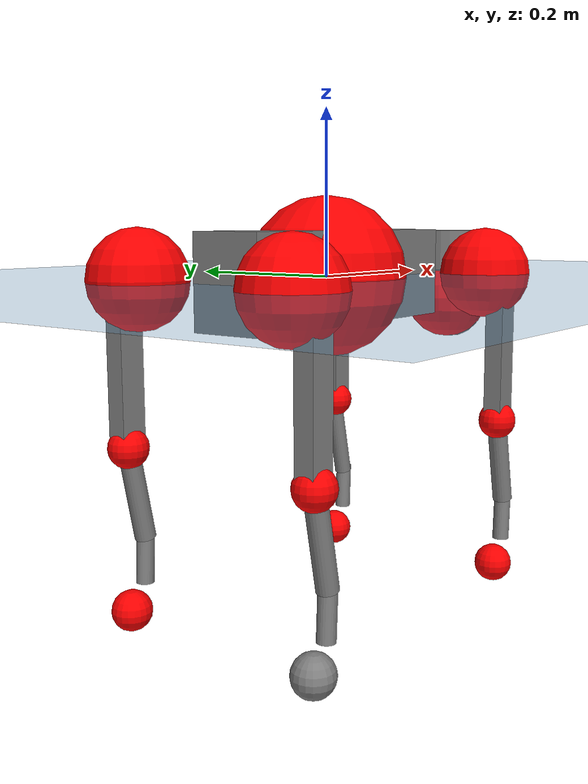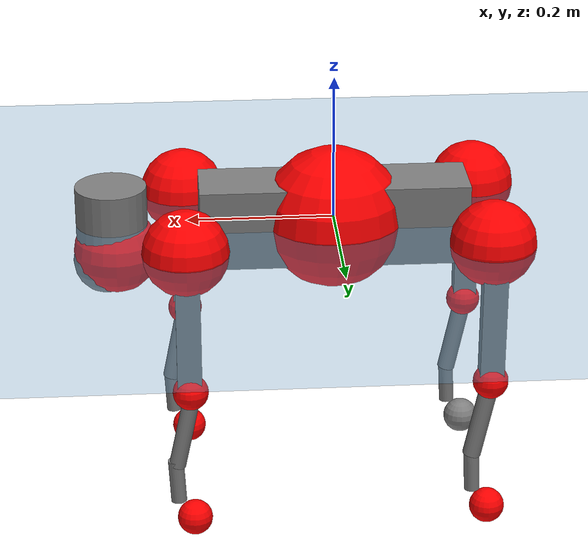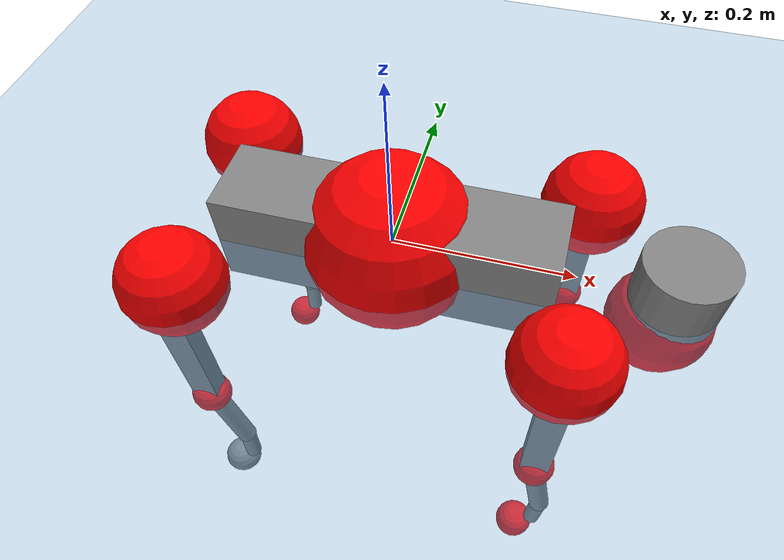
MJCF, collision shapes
<mujoco model="go2">
  <compiler angle="radian" assetdir="assets" balanceinertia="true" inertiafromgeom="false"/>

  <option timestep="0.005" density="1.2" viscosity="2e-05"/>

  <size nkey="1"/>

  <visual>
    <quality shadowsize="8192"/>
    <map shadowclip="0.5"/>
  </visual>

  <default>
    <default class="/">
      <geom contype="0" conaffinity="0" group="1" solref="-1000 -80"/>
      <site size="0.01 0.005 0.005" group="5"/>
      <general forcelimited="true" biastype="affine" gainprm="20" biasprm="0 -20 -0.5"/>
      <default class="go2">
        <joint armature="0.01" damping="0.01" frictionloss="0.2"/>
        <geom condim="1" margin="0.001"/>
        <default class="visual">
          <geom type="mesh" group="2"/>
        </default>
        <default class="collision">
          <geom group="3"/>
          <default class="foot">
            <geom size="0.022 0 0" condim="6" priority="1" friction="0.8 0.02 0.01" solimp="0.015 1 0.022"/>
          </default>
        </default>
        <default class="reward_collision_sphere">
          <geom group="5" rgba="1 0 0 1"/>
        </default>
      </default>
    </default>
  </default>

  <asset>
    <texture type="skybox" colorspace="auto" name="//unnamed_texture_0" builtin="gradient" rgb1="0.95 0.95 0.95" rgb2="0.95 0.95 0.95" width="100" height="600"/>
    <texture type="2d" colorspace="auto" name="texplane" builtin="checker" rgb1="0.345 0.575 0.748" rgb2="0.345 0.575 0.748" markrgb="1 1 1" width="512" height="512"/>
    <material name="MatPlane" class="/" texture="texplane" texuniform="true" texrepeat="2 2" specular="0.9"/>
    <material name="metal" class="/" rgba="0.9 0.95 0.95 1"/>
    <material name="black" class="/" rgba="0 0 0 1"/>
    <material name="white" class="/"/>
    <material name="gray" class="/" rgba="0.671705 0.692426 0.77427 1"/>
    <mesh name="base_0" class="/" file="base_0.obj"/>
    <mesh name="base_1" class="/" file="base_1.obj"/>
    <mesh name="base_2" class="/" file="base_2.obj"/>
    <mesh name="base_3" class="/" file="base_3.obj"/>
    <mesh name="base_4" class="/" file="base_4.obj"/>
    <mesh name="hip_0" class="/" file="hip_0.obj"/>
    <mesh name="hip_1" class="/" file="hip_1.obj"/>
    <mesh name="thigh_0" class="/" file="thigh_0.obj"/>
    <mesh name="thigh_1" class="/" file="thigh_1.obj"/>
    <mesh name="thigh_mirror_0" class="/" file="thigh_mirror_0.obj"/>
    <mesh name="thigh_mirror_1" class="/" file="thigh_mirror_1.obj"/>
    <mesh name="calf_0" class="/" file="calf_0.obj"/>
    <mesh name="calf_1" class="/" file="calf_1.obj"/>
    <mesh name="calf_mirror_0" class="/" file="calf_mirror_0.obj"/>
    <mesh name="calf_mirror_1" class="/" file="calf_mirror_1.obj"/>
    <mesh name="foot" class="/" file="foot.obj"/>
  </asset>

  <worldbody>
    <geom name="floor" class="/" size="100 100 0.125" type="plane" group="0" material="MatPlane"/>
    <light name="toplight_shadow" class="/" pos="0 0 5" dir="0.0990148 0.0990148 -0.990148" type="directional" ambient="0.04 0.04 0.04" diffuse="0.55 0.55 0.55" specular="0.12 0.12 0.12"/>
    <light name="toplight_fill" class="/" pos="0 0 5" dir="0.0990148 0.0990148 -0.990148" type="directional" castshadow="false" ambient="0.04 0.04 0.04" diffuse="0.3 0.3 0.3" specular="0.08 0.08 0.08"/>
    <body name="trunk" childclass="go2" pos="0.000196949 0.000369171 0.000592732" quat="1 -0.00016301 -3.18892e-05 4.53499e-05">
      <inertial pos="0.0231934 -0.00170515 -0.00497811" quat="-0.00437499 0.712332 -0.000870517 0.701828" mass="6.25069" diaginertia="0.136406 0.0711724 0.0157727"/>
      <joint name="//unnamed_joint_0" type="free" armature="0" damping="0" frictionloss="0"/>
      <geom name="//unnamed_geom_1" class="visual" material="black" mesh="base_0"/>
      <geom name="//unnamed_geom_2" class="visual" material="black" mesh="base_1"/>
      <geom name="//unnamed_geom_3" class="visual" material="black" mesh="base_2"/>
      <geom name="//unnamed_geom_4" class="visual" material="white" mesh="base_3"/>
      <geom name="//unnamed_geom_5" class="visual" material="gray" mesh="base_4"/>
      <geom name="trunk_1" class="collision" size="0.183006 0.045484 0.0554564" type="box"/>
      <geom name="trunk_2" class="collision" size="0.0486459 0.0437813" pos="0.301692 0 0.00918687" type="cylinder"/>
      <geom name="trunk_3" class="collision" size="0.0457272" pos="0.310161 0 -0.0551212"/>
      <geom name="//unnamed_geom_9" class="reward_collision_sphere" size="0.0972919"/>
      <geom name="//unnamed_geom_10" class="reward_collision_sphere" size="0.0583751" pos="0.2964 0 -0.0413409"/>
      <site name="imu" pos="-0.0292865 -6.5323e-05 0.038753" size="0.00972919"/>
      <camera name="track" pos="0 -1.883 0" quat="0.707107 0.707107 0 0" mode="trackcom"/>
      <camera name="ego_camera" pos="0.330274 0 0.0413409" quat="-0.5 -0.5 0.5 0.5"/>
      <body name="FL_hip" pos="0.203858 0.0439719 0.000515305" quat="1 3.09087e-05 -5.39601e-05 -5.23679e-05">
        <inertial pos="-0.00592767 0.00162832 0.000199778" quat="0.489158 0.498753 0.511782 0.500049" mass="0.623076" diaginertia="0.00117603 0.000447239 0.000315296"/>
        <joint name="FL_hip_joint" pos="0 0 0" axis="1 -1.35991e-05 -0.000922527" stiffness="0.0121946" range="-1.02944 1.042" armature="0.00969297" damping="0.0116161" frictionloss="0.193923"/>
        <geom name="//unnamed_geom_11" class="visual" material="metal" mesh="hip_0"/>
        <geom name="//unnamed_geom_12" class="visual" material="gray" mesh="hip_1"/>
        <geom name="//unnamed_geom_13" class="collision" size="0.0447543 0.0194584" pos="0 0.07532 0" quat="0.707107 0.707107 0 0" type="cylinder"/>
        <geom name="//unnamed_geom_14" class="reward_collision_sphere" size="0.0583751" pos="0 0.065905 0"/>
        <body name="FL_thigh" pos="-0.00062624 0.0887958 0.000289756" quat="1 -0.000256077 -8.14612e-05 -0.000881161">
          <inertial pos="-0.00409172 -0.0189212 -0.0304683" quat="0.830675 0.0806015 -0.0184936 0.550582" mass="1.04989" diaginertia="0.00781614 0.00441471 0.00057575"/>
          <joint name="FL_thigh_joint" pos="0 0 0" axis="-0.00313389 0.999982 -0.00515893" stiffness="0.00178259" range="-1.56152 3.46677" armature="0.0106064" damping="0.0086641" frictionloss="0.202543"/>
          <geom name="//unnamed_geom_15" class="visual" material="metal" mesh="thigh_0"/>
          <geom name="//unnamed_geom_16" class="visual" material="gray" mesh="thigh_1"/>
          <geom name="//unnamed_geom_17" class="collision" size="0.103616 0.0119183 0.0165396" pos="0 0 -0.0978401" quat="0.707107 0 0.707107 0" type="box"/>
          <body name="FL_calf" pos="-0.00109584 5.55531e-05 -0.195858" quat="1 -6.28903e-05 -2.02925e-06 -0.00011694">
            <inertial pos="0.00575729 0.000113038 -0.129815" quat="0.712258 0.00496735 -0.00483456 0.701883" mass="0.221678" diaginertia="0.00199339 0.00110832 3.48203e-05"/>
            <joint name="FL_calf_joint" pos="0 0 0" axis="0.000426959 0.999999 -0.00127366" stiffness="0.00213841" range="-2.68758 -0.827435" armature="0.010169" damping="0" frictionloss="0.187966"/>
            <geom name="//unnamed_geom_18" class="visual" material="gray" mesh="calf_0"/>
            <geom name="//unnamed_geom_19" class="visual" material="black" mesh="calf_1"/>
            <geom name="FL_calf0" class="collision" size="0.011675 0.0583751" pos="0.00846856 0 -0.0551212" quat="0.994493 0 -0.104807 0" type="cylinder"/>
            <geom name="//unnamed_geom_21" class="collision" size="0.0107021 0.0316199" pos="0.0211714 0 -0.135966" quat="0.999688 0 0.0249974 0" type="cylinder"/>
            <geom name="//unnamed_geom_22" class="visual" pos="0 0 -0.19568" quat="1 0 0 0" material="black" mesh="foot"/>
            <geom name="FL_foot" class="foot" size="0.0169783" pos="-0.00211714 0 -0.19568"/>
            <geom name="//unnamed_geom_24" class="reward_collision_sphere" size="0.024323"/>
            <geom name="//unnamed_geom_25" class="reward_collision_sphere" size="0.024323" pos="-0.00211714 0 -0.19568"/>
            <site name="FL_foot" class="foot" pos="-0.00211714 0 -0.19568" size="0.00972919"/>
          </body>
        </body>
      </body>
      <body name="FR_hip" pos="0.203469 -0.0420944 -0.000755178" quat="1 0.000128575 -0.000157486 7.55966e-05">
        <inertial pos="-0.00614529 -0.00259395 0.000144556" quat="0.501393 0.505568 0.494575 0.498399" mass="0.629234" diaginertia="0.00117332 0.000441068 0.000309938"/>
        <joint name="FR_hip_joint" pos="0 0 0" axis="0.999979 -0.00631289 -0.00126355" range="-1.03944 1.06469" armature="0.0102639" damping="0.0183923" frictionloss="0.190468"/>
        <geom name="//unnamed_geom_26" class="visual" pos="0 1.98738e-10 8.52429e-09" quat="4.63268e-05 1 0 0" material="metal" mesh="hip_0"/>
        <geom name="//unnamed_geom_27" class="visual" pos="0 3.22179e-10 -2.10838e-08" quat="4.63268e-05 1 0 0" material="gray" mesh="hip_1"/>
        <geom name="//unnamed_geom_28" class="collision" size="0.0447543 0.0194584" pos="0 -0.07532 0" quat="0.707107 0.707107 0 0" type="cylinder"/>
        <geom name="//unnamed_geom_29" class="reward_collision_sphere" size="0.0583751" pos="0 -0.065905 0"/>
        <body name="FR_thigh" pos="1.90178e-06 -0.0894494 -0.000342791" quat="1 -5.79519e-05 -9.01951e-05 -5.37023e-06">
          <inertial pos="-0.0049454 0.0216276 -0.0285359" quat="0.554952 -0.0199442 0.0837664 0.827414" mass="1.05648" diaginertia="0.00795824 0.00432917 0.00057602"/>
          <joint name="FR_thigh_joint" pos="0 0 0" axis="0.000408193 -1 -0.000334364" stiffness="0.00864102" range="-3.48602 1.5571" armature="0.0092398" damping="0.0154285" frictionloss="0.200595"/>
          <geom name="//unnamed_geom_30" class="visual" material="metal" mesh="thigh_mirror_0"/>
          <geom name="//unnamed_geom_31" class="visual" material="gray" mesh="thigh_mirror_1"/>
          <geom name="//unnamed_geom_32" class="collision" size="0.103616 0.0119183 0.0165396" pos="0 0 -0.0978401" quat="0.707107 0 0.707107 0" type="box"/>
          <body name="FR_calf" pos="0.000348204 0.000287335 -0.194182" quat="1 -2.54904e-05 -3.4295e-05 5.34814e-05">
            <inertial pos="0.00720809 0.000360072 -0.129858" quat="0.700975 -0.00353253 0.00471177 0.713162" mass="0.227121" diaginertia="0.00204859 0.00110491 3.58531e-05"/>
            <joint name="FR_calf_joint" pos="0 0 0" axis="0.000151778 -0.999999 -0.00162308" range="0.82581 2.71514" armature="0.0095002" damping="0.0042357" frictionloss="0.203084"/>
            <geom name="//unnamed_geom_33" class="visual" material="gray" mesh="calf_mirror_0"/>
            <geom name="//unnamed_geom_34" class="visual" material="black" mesh="calf_mirror_1"/>
            <geom name="FR_calf0" class="collision" size="0.0126479 0.0583751" pos="0.0105857 0 -0.0551212" quat="0.995004 0 -0.0998334 0" type="cylinder"/>
            <geom name="//unnamed_geom_36" class="collision" size="0.0107021 0.0316199" pos="0.0211714 0 -0.135966" quat="0.999688 0 0.0249974 0" type="cylinder"/>
            <geom name="//unnamed_geom_37" class="visual" pos="0 0 -0.19568" quat="1 0 0 0" material="black" mesh="foot"/>
            <geom name="FR_foot" class="foot" size="0.0206706" pos="-0.00211714 0 -0.19568"/>
            <geom name="//unnamed_geom_39" class="reward_collision_sphere" size="0.024323"/>
            <geom name="//unnamed_geom_40" class="reward_collision_sphere" size="0.024323" pos="-0.00211714 0 -0.19568"/>
            <site name="FR_foot" class="foot" pos="-0.00211714 0 -0.19568" size="0.00972919"/>
          </body>
        </body>
      </body>
      <body name="RL_hip" pos="-0.204578 0.0427854 0.00187763" quat="1 -4.11046e-05 -0.000481062 -0.000381929">
        <inertial pos="0.00584619 0.0017919 -0.000496448" quat="0.505431 0.498158 0.497173 0.499196" mass="0.616579" diaginertia="0.0011849 0.000451318 0.000314552"/>
        <joint name="RL_hip_joint" pos="0 0 0" axis="-0.999817 -0.0108775 0.0157453" stiffness="0.00661293" range="-1.03148 1.06635" armature="0.00970324" damping="0.0153653" frictionloss="0.196635"/>
        <geom name="//unnamed_geom_41" class="visual" pos="-1.21861e-09 0 -2.38875e-07" quat="4.63268e-05 0 1 0" material="metal" mesh="hip_0"/>
        <geom name="//unnamed_geom_42" class="visual" pos="-1.97551e-09 0 -2.11848e-07" quat="4.63268e-05 0 1 0" material="gray" mesh="hip_1"/>
        <geom name="//unnamed_geom_43" class="collision" size="0.0447543 0.0194584" pos="0 0.07532 0" quat="0.707107 0.707107 0 0" type="cylinder"/>
        <geom name="//unnamed_geom_44" class="reward_collision_sphere" size="0.0583751" pos="0 0.065905 0"/>
        <body name="RL_thigh" pos="-0.000365311 0.0910028 0.000591145" quat="1 0.000335508 -0.000434311 -0.00037961">
          <inertial pos="-0.0036399 -0.0186682 -0.0310095" quat="0.829369 0.085587 -0.0203658 0.551731" mass="1.0382" diaginertia="0.00798887 0.0042767 0.000582139"/>
          <joint name="RL_thigh_joint" pos="0 0 0" axis="0.0059908 0.999978 0.0028148" stiffness="0.00204491" range="-0.53381 4.54379" armature="0.00951764" damping="0.0100145" frictionloss="0.202631"/>
          <geom name="//unnamed_geom_45" class="visual" material="metal" mesh="thigh_0"/>
          <geom name="//unnamed_geom_46" class="visual" material="gray" mesh="thigh_1"/>
          <geom name="//unnamed_geom_47" class="collision" size="0.103616 0.0119183 0.0165396" pos="0 0 -0.0978401" quat="0.707107 0 0.707107 0" type="box"/>
          <body name="RL_calf" pos="5.03765e-06 -0.000898193 -0.1953" quat="1 5.95338e-05 -0.000318292 -8.0946e-05">
            <inertial pos="0.00630511 0.000238533 -0.130135" quat="0.710494 0.00139448 -0.00409827 0.70369" mass="0.225083" diaginertia="0.00199438 0.00108875 3.48475e-05"/>
            <joint name="RL_calf_joint" pos="0 0 0" axis="-0.00484989 0.999974 0.0052678" stiffness="0.00575375" range="-2.68747 -0.836308" armature="0.0106345" damping="0" frictionloss="0.199702"/>
            <geom name="//unnamed_geom_48" class="visual" material="gray" mesh="calf_0"/>
            <geom name="//unnamed_geom_49" class="visual" material="black" mesh="calf_1"/>
            <geom name="RL_calf0" class="collision" size="0.0126479 0.0583751" pos="0.0105857 0 -0.0551212" quat="0.995004 0 -0.0998334 0" type="cylinder"/>
            <geom name="//unnamed_geom_51" class="collision" size="0.0107021 0.0316199" pos="0.0211714 0 -0.135966" quat="0.999688 0 0.0249974 0" type="cylinder"/>
            <geom name="//unnamed_geom_52" class="visual" pos="0 0 -0.19568" quat="1 0 0 0" material="black" mesh="foot"/>
            <geom name="RL_foot" class="foot" size="0.0193287" pos="-0.00211714 0 -0.19568"/>
            <geom name="//unnamed_geom_54" class="reward_collision_sphere" size="0.024323"/>
            <geom name="//unnamed_geom_55" class="reward_collision_sphere" size="0.024323" pos="-0.00211714 0 -0.19568"/>
            <site name="RL_foot" class="foot" pos="-0.00211714 0 -0.19568" size="0.00972919"/>
          </body>
        </body>
      </body>
      <body name="RR_hip" pos="-0.206037 -0.0448194 -0.00126348" quat="1 -0.000138847 0.000565893 0.000811963">
        <inertial pos="0.00570581 -0.00138204 -8.1997e-05" quat="0.499239 0.497037 0.49822 0.505462" mass="0.632294" diaginertia="0.00118839 0.000442891 0.00032585"/>
        <joint name="RR_hip_joint" pos="0 0 0" axis="-1 -7.75036e-06 3.60271e-05" range="-1.05246 1.04015" armature="0.0103571" damping="0.00529943" frictionloss="0.188431"/>
        <geom name="//unnamed_geom_56" class="visual" pos="1.21455e-09 1.98738e-10 -2.47399e-07" quat="2.14617e-09 4.63268e-05 4.63268e-05 -1" material="metal" mesh="hip_0"/>
        <geom name="//unnamed_geom_57" class="visual" pos="1.98553e-09 3.22179e-10 -1.90764e-07" quat="2.14617e-09 4.63268e-05 4.63268e-05 -1" material="gray" mesh="hip_1"/>
        <geom name="//unnamed_geom_58" class="collision" size="0.0447543 0.0194584" pos="0 -0.07532 0" quat="0.707107 0.707107 0 0" type="cylinder"/>
        <geom name="//unnamed_geom_59" class="reward_collision_sphere" size="0.0583751" pos="0 -0.065905 0"/>
        <body name="RR_thigh" pos="0.00100352 -0.0902435 3.56089e-06" quat="1 0.000628442 -4.95616e-05 8.68483e-05">
          <inertial pos="-0.003556 0.0209693 -0.0298147" quat="0.551859 -0.0219882 0.0862567 0.829173" mass="1.05356" diaginertia="0.0078583 0.00434619 0.000578057"/>
          <joint name="RR_thigh_joint" pos="0 0 0" axis="0.00446445 -0.999962 -0.00752073" range="-4.54033 0.562695" armature="0.00889341" damping="0.0142632" frictionloss="0.192911"/>
          <geom name="//unnamed_geom_60" class="visual" material="metal" mesh="thigh_mirror_0"/>
          <geom name="//unnamed_geom_61" class="visual" material="gray" mesh="thigh_mirror_1"/>
          <geom name="//unnamed_geom_62" class="collision" size="0.103616 0.0119183 0.0165396" pos="0 0 -0.0978401" quat="0.707107 0 0.707107 0" type="box"/>
          <body name="RR_calf" pos="0.000862017 -0.000800249 -0.196156" quat="1 0.000185035 -0.000269487 0.000118717">
            <inertial pos="0.00738843 0.00118811 -0.130144" quat="0.703753 -0.00490171 0.00193668 0.710425" mass="0.22079" diaginertia="0.00196575 0.0010675 3.45256e-05"/>
            <joint name="RR_calf_joint" pos="0 0 0" axis="-0.00386678 -0.99999 -0.00225354" stiffness="0.000173421" range="0.858679 2.70732" armature="0.00940777" damping="0.010084" frictionloss="0.186255"/>
            <geom name="//unnamed_geom_63" class="visual" material="gray" mesh="calf_mirror_0"/>
            <geom name="//unnamed_geom_64" class="visual" material="black" mesh="calf_mirror_1"/>
            <geom name="RR_calf0" class="collision" size="0.0126479 0.0583751" pos="0.0105857 0 -0.0551212" quat="0.995004 0 -0.0998334 0" type="cylinder"/>
            <geom name="//unnamed_geom_66" class="collision" size="0.0107021 0.0316199" pos="0.0211714 0 -0.135966" quat="0.999688 0 0.0249974 0" type="cylinder"/>
            <geom name="//unnamed_geom_67" class="visual" pos="0 0 -0.19568" quat="1 0 0 0" material="black" mesh="foot"/>
            <geom name="RR_foot" class="foot" size="0.0249487" pos="-0.00211714 0 -0.19568"/>
            <geom name="//unnamed_geom_69" class="reward_collision_sphere" size="0.024323"/>
            <geom name="//unnamed_geom_70" class="reward_collision_sphere" size="0.024323" pos="-0.00211714 0 -0.19568"/>
            <site name="RR_foot" class="foot" pos="-0.00211714 0 -0.19568" size="0.00972919"/>
          </body>
        </body>
      </body>
    </body>
  </worldbody>

  <contact>
    <pair class="/" geom1="floor" geom2="FL_foot" name="//unnamed_contact_0"/>
    <pair class="/" geom1="floor" geom2="FR_foot" name="//unnamed_contact_1"/>
    <pair class="/" geom1="floor" geom2="RL_foot" name="//unnamed_contact_2"/>
    <pair class="/" geom1="floor" geom2="RR_foot" name="//unnamed_contact_3"/>
  </contact>

  <actuator>
    <general name="FL_hip" class="/" joint="FL_hip_joint" forcerange="-22.1282 22.1282" gainprm="19.4687" biasprm="0 -19.4687 -0.485766"/>
    <general name="FL_thigh" class="/" joint="FL_thigh_joint" forcerange="-22.8675 22.8675" gainprm="19.4687" biasprm="0 -19.4687 -0.485766"/>
    <general name="FL_calf" class="/" joint="FL_calf_joint" forcerange="-43.864 43.864" gainprm="19.4687" biasprm="0 -19.4687 -0.485766"/>
    <general name="FR_hip" class="/" joint="FR_hip_joint" forcerange="-23.8064 23.8064" gainprm="19.4687" biasprm="0 -19.4687 -0.485766"/>
    <general name="FR_thigh" class="/" joint="FR_thigh_joint" forcerange="-23.2254 23.2254" gainprm="19.4687" biasprm="0 -19.4687 -0.485766"/>
    <general name="FR_calf" class="/" joint="FR_calf_joint" forcerange="-43.9087 43.9087" gainprm="19.4687" biasprm="0 -19.4687 -0.485766"/>
    <general name="RL_hip" class="/" joint="RL_hip_joint" forcerange="-23.7005 23.7005" gainprm="19.4687" biasprm="0 -19.4687 -0.485766"/>
    <general name="RL_thigh" class="/" joint="RL_thigh_joint" forcerange="-23.3831 23.3831" gainprm="19.4687" biasprm="0 -19.4687 -0.485766"/>
    <general name="RL_calf" class="/" joint="RL_calf_joint" forcerange="-43.0005 43.0005" gainprm="19.4687" biasprm="0 -19.4687 -0.485766"/>
    <general name="RR_hip" class="/" joint="RR_hip_joint" forcerange="-23.9131 23.9131" gainprm="19.4687" biasprm="0 -19.4687 -0.485766"/>
    <general name="RR_thigh" class="/" joint="RR_thigh_joint" forcerange="-22.321 22.321" gainprm="19.4687" biasprm="0 -19.4687 -0.485766"/>
    <general name="RR_calf" class="/" joint="RR_calf_joint" forcerange="-46.3491 46.3491" gainprm="19.4687" biasprm="0 -19.4687 -0.485766"/>
  </actuator>

  <sensor>
    <gyro site="imu" name="imu_angular_velocity"/>
    <velocimeter site="imu" name="imu_linear_velocity"/>
    <framelinvel objtype="site" objname="FL_foot" name="FL_foot_global_linear_velocity"/>
    <framelinvel objtype="site" objname="FR_foot" name="FR_foot_global_linear_velocity"/>
    <framelinvel objtype="site" objname="RL_foot" name="RL_foot_global_linear_velocity"/>
    <framelinvel objtype="site" objname="RR_foot" name="RR_foot_global_linear_velocity"/>
  </sensor>

  <keyframe>
    <key name="home" qpos="0 0 0.325 1 0 0 0 0.1 0.8 -1.5 -0.1 -0.8 1.5 -0.1 0.8 -1.5 0.1 -0.8 1.5"/>
  </keyframe>
</mujoco>
